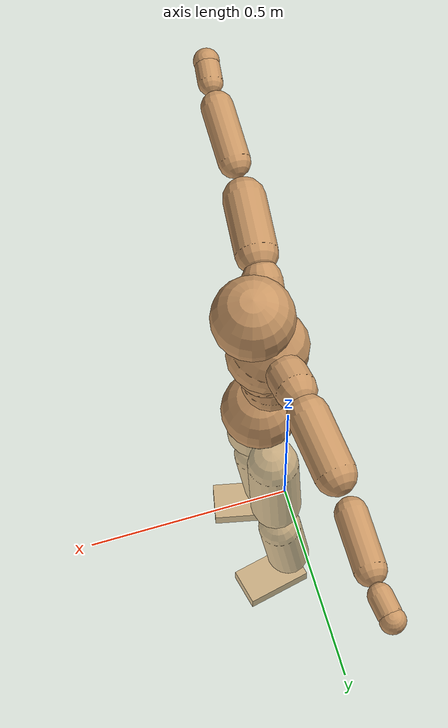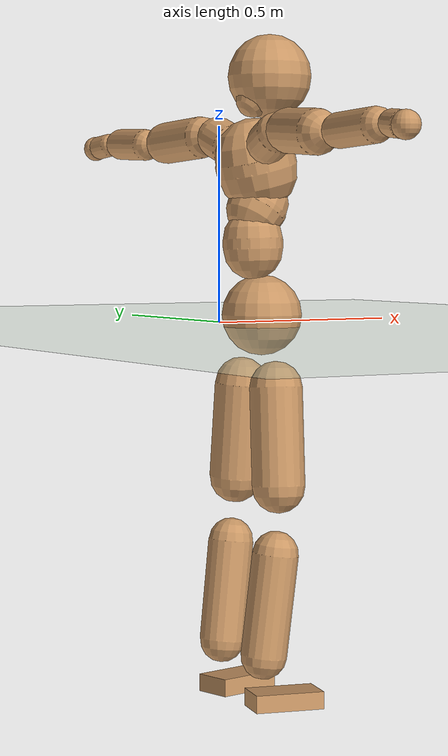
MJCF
<mujoco model="humanoid">
  <compiler coordinate="local" angle="radian"/>
  <default>
    <joint damping="0.0" armature="0.01" stiffness="0.0" limited="true"/>
    <geom conaffinity="1" condim="3" contype="7" margin="0.001" rgba="0.8 0.6 .4 1"/>
  </default>
  <asset>
    <texture type="skybox" builtin="gradient" rgb1=".4 .5 .6" rgb2="0 0 0" width="100" height="100"/>
    <texture builtin="flat" height="1278" mark="cross" markrgb="1 1 1" name="texgeom" random="0.01" rgb1="0.8 0.6 0.4" rgb2="0.8 0.6 0.4" type="cube" width="127"/>
    <texture builtin="checker" height="100" name="texplane" rgb1="0 0 0" rgb2="0.8 0.8 0.8" type="2d" width="100"/>
    <material name="MatPlane" reflectance="0.5" shininess="1" specular="1" texrepeat="60 60" texture="texplane"/>
    <material name="geom" texture="texgeom" texuniform="true"/>
  </asset>
  <worldbody>
    <light cutoff="100" diffuse="1 1 1" dir="-0 0 -1.3" directional="true" exponent="1" pos="0 0 1.3" specular=".1 .1 .1"/>
    <geom conaffinity="1" condim="3" name="floor" pos="0 0 0" rgba="0.8 0.9 0.8 1" size="100 100 .2" type="plane" material="MatPlane"/>
    <body name="Pelvis" pos="-0.0008 -0.2184 0.0268">
      <freejoint name="Pelvis"/>
      <geom type="sphere" contype="1" conaffinity="1" density="500" size="0.0996" pos="0.0000 0.0000 0.0000" name="Pelvis"/>
      <body name="L_Hip" pos="-0.0092 0.0773 -0.0951">
        <joint name="L_Hip_x" type="hinge" pos="0 0 0" axis="1 0 0" stiffness="800" damping="80" armature="0.02" range="-180.0000 180.0000"/>
        <joint name="L_Hip_y" type="hinge" pos="0 0 0" axis="0 1 0" stiffness="800" damping="80" armature="0.02" range="-180.0000 180.0000"/>
        <joint name="L_Hip_z" type="hinge" pos="0 0 0" axis="0 0 1" stiffness="800" damping="80" armature="0.02" range="-180.0000 180.0000"/>
        <geom type="capsule" contype="1" conaffinity="1" density="500" fromto="-0.0016 0.0067 -0.0791 -0.0064 0.0269 -0.3165" size="0.0659" name="L_Hip"/>
        <body name="L_Knee" pos="-0.008 0.0336 -0.3957">
          <joint name="L_Knee_x" type="hinge" pos="0 0 0" axis="1 0 0" stiffness="800" damping="80" armature="0.02" range="-180.0000 180.0000"/>
          <joint name="L_Knee_y" type="hinge" pos="0 0 0" axis="0 1 0" stiffness="800" damping="80" armature="0.02" range="-180.0000 180.0000"/>
          <joint name="L_Knee_z" type="hinge" pos="0 0 0" axis="0 0 1" stiffness="800" damping="80" armature="0.02" range="-180.0000 180.0000"/>
          <geom type="capsule" contype="1" conaffinity="1" density="500" fromto="-0.0097 -0.0023 -0.0836 -0.0390 -0.0094 -0.3343" size="0.0568" name="L_Knee"/>
          <body name="L_Ankle" pos="-0.0487 -0.0117 -0.4178">
            <joint name="L_Ankle_x" type="hinge" pos="0 0 0" axis="1 0 0" stiffness="800" damping="80" armature="0.02" range="-180.0000 180.0000"/>
            <joint name="L_Ankle_y" type="hinge" pos="0 0 0" axis="0 1 0" stiffness="800" damping="80" armature="0.02" range="-180.0000 180.0000"/>
            <joint name="L_Ankle_z" type="hinge" pos="0 0 0" axis="0 0 1" stiffness="800" damping="80" armature="0.02" range="-180.0000 180.0000"/>
            <geom type="box" contype="1" conaffinity="1" density="500" pos="0.0598 0.0133 -0.0297" size="0.0849 0.0487 0.0218" quat="0.9940 0.0000 0.0000 0.1095" name="L_Ankle"/>
            <body name="L_Toe" pos="0.1196 0.0267 -0.0594">
              <joint name="L_Toe_x" type="hinge" pos="0 0 0" axis="1 0 0" stiffness="500" damping="50" armature="0.02" range="-180.0000 180.0000"/>
              <joint name="L_Toe_y" type="hinge" pos="0 0 0" axis="0 1 0" stiffness="500" damping="50" armature="0.02" range="-180.0000 180.0000"/>
              <joint name="L_Toe_z" type="hinge" pos="0 0 0" axis="0 0 1" stiffness="500" damping="50" armature="0.02" range="-180.0000 180.0000"/>
              <geom type="box" contype="1" conaffinity="1" density="500" pos="0.0000 0.0000 0.0295" size="0.001 0.0024 0.0011" quat="0.9933 0.0000 0.0000 0.1155" name="L_Toe"/>
            </body>
          </body>
        </body>
      </body>
      <body name="R_Hip" pos="-0.0054 -0.0746 -0.0944">
        <joint name="R_Hip_x" type="hinge" pos="0 0 0" axis="1 0 0" stiffness="800" damping="80" armature="0.02" range="-180.0000 180.0000"/>
        <joint name="R_Hip_y" type="hinge" pos="0 0 0" axis="0 1 0" stiffness="800" damping="80" armature="0.02" range="-180.0000 180.0000"/>
        <joint name="R_Hip_z" type="hinge" pos="0 0 0" axis="0 0 1" stiffness="800" damping="80" armature="0.02" range="-180.0000 180.0000"/>
        <geom type="capsule" contype="1" conaffinity="1" density="500" fromto="-0.0022 -0.0081 -0.0804 -0.0088 -0.0326 -0.3218" size="0.0651" name="R_Hip"/>
        <body name="R_Knee" pos="-0.011 -0.0407 -0.4022">
          <joint name="R_Knee_x" type="hinge" pos="0 0 0" axis="1 0 0" stiffness="800" damping="80" armature="0.02" range="-180.0000 180.0000"/>
          <joint name="R_Knee_y" type="hinge" pos="0 0 0" axis="0 1 0" stiffness="800" damping="80" armature="0.02" range="-180.0000 180.0000"/>
          <joint name="R_Knee_z" type="hinge" pos="0 0 0" axis="0 0 1" stiffness="800" damping="80" armature="0.02" range="-180.0000 180.0000"/>
          <geom type="capsule" contype="1" conaffinity="1" density="500" fromto="-0.0094 0.0030 -0.0837 -0.0374 0.0119 -0.3347" size="0.0569" name="R_Knee"/>
          <body name="R_Ankle" pos="-0.0468 0.0148 -0.4184">
            <joint name="R_Ankle_x" type="hinge" pos="0 0 0" axis="1 0 0" stiffness="800" damping="80" armature="0.02" range="-180.0000 180.0000"/>
            <joint name="R_Ankle_y" type="hinge" pos="0 0 0" axis="0 1 0" stiffness="800" damping="80" armature="0.02" range="-180.0000 180.0000"/>
            <joint name="R_Ankle_z" type="hinge" pos="0 0 0" axis="0 0 1" stiffness="800" damping="80" armature="0.02" range="-180.0000 180.0000"/>
            <geom type="box" contype="1" conaffinity="1" density="500" pos="0.0619 -0.0134 -0.0254" size="0.0864 0.0485 0.0217" quat="0.9943 0.0000 0.0000 -0.1064" name="R_Ankle"/>
            <body name="R_Toe" pos="0.1238 -0.0268 -0.0508">
              <joint name="R_Toe_x" type="hinge" pos="0 0 0" axis="1 0 0" stiffness="500" damping="50" armature="0.02" range="-180.0000 180.0000"/>
              <joint name="R_Toe_y" type="hinge" pos="0 0 0" axis="0 1 0" stiffness="500" damping="50" armature="0.02" range="-180.0000 180.0000"/>
              <joint name="R_Toe_z" type="hinge" pos="0 0 0" axis="0 0 1" stiffness="500" damping="50" armature="0.02" range="-180.0000 180.0000"/>
              <geom type="box" contype="1" conaffinity="1" density="500" pos="0.0000 0.0000 0.0279" size="0.0009 0.0024 0.0012" quat="0.9953 0.0000 0.0000 -0.0971" name="R_Toe"/>
            </body>
          </body>
        </body>
      </body>
      <body name="Torso" pos="-0.0243 -0.0029 0.1093">
        <joint name="Torso_x" type="hinge" pos="0 0 0" axis="1 0 0" stiffness="1000" damping="100" armature="0.02" range="-180.0000 180.0000"/>
        <joint name="Torso_y" type="hinge" pos="0 0 0" axis="0 1 0" stiffness="1000" damping="100" armature="0.02" range="-180.0000 180.0000"/>
        <joint name="Torso_z" type="hinge" pos="0 0 0" axis="0 0 1" stiffness="1000" damping="100" armature="0.02" range="-180.0000 180.0000"/>
        <geom type="capsule" contype="1" conaffinity="1" density="500" fromto="-0.0017 0.0025 0.0793 -0.0011 0.0017 0.0529" size="0.0745" name="Torso"/>
        <body name="Spine" pos="-0.0028 0.0042 0.1322">
          <joint name="Spine_x" type="hinge" pos="0 0 0" axis="1 0 0" stiffness="1000" damping="100" armature="0.02" range="-180.0000 180.0000"/>
          <joint name="Spine_y" type="hinge" pos="0 0 0" axis="0 1 0" stiffness="1000" damping="100" armature="0.02" range="-180.0000 180.0000"/>
          <joint name="Spine_z" type="hinge" pos="0 0 0" axis="0 0 1" stiffness="1000" damping="100" armature="0.02" range="-180.0000 180.0000"/>
          <geom type="capsule" contype="1" conaffinity="1" density="500" fromto="0.0189 0.0007 0.0315 0.0126 0.0005 0.0210" size="0.075" name="Spine"/>
          <body name="Chest" pos="0.0315 0.0012 0.0524">
            <joint name="Chest_x" type="hinge" pos="0 0 0" axis="1 0 0" stiffness="1000" damping="100" armature="0.02" range="-180.0000 180.0000"/>
            <joint name="Chest_y" type="hinge" pos="0 0 0" axis="0 1 0" stiffness="1000" damping="100" armature="0.02" range="-180.0000 180.0000"/>
            <joint name="Chest_z" type="hinge" pos="0 0 0" axis="0 0 1" stiffness="1000" damping="100" armature="0.02" range="-180.0000 180.0000"/>
            <geom type="capsule" contype="1" conaffinity="1" density="500" fromto="-0.0240 -0.0010 0.0917 -0.0160 -0.0006 0.0612" size="0.1" name="Chest"/>
            <body name="Neck" pos="-0.0409 -0.0031 0.2197">
              <joint name="Neck_x" type="hinge" pos="0 0 0" axis="1 0 0" stiffness="500" damping="50" armature="0.02" range="-180.0000 180.0000"/>
              <joint name="Neck_y" type="hinge" pos="0 0 0" axis="0 1 0" stiffness="500" damping="50" armature="0.02" range="-180.0000 180.0000"/>
              <joint name="Neck_z" type="hinge" pos="0 0 0" axis="0 0 1" stiffness="500" damping="50" armature="0.02" range="-180.0000 180.0000"/>
              <geom type="capsule" contype="1" conaffinity="1" density="500" fromto="0.0120 0.0007 0.0148 0.0480 0.0028 0.0591" size="0.0431" name="Neck"/>
              <body name="Head" pos="0.06 0.0035 0.0738">
                <joint name="Head_x" type="hinge" pos="0 0 0" axis="1 0 0" stiffness="500" damping="50" armature="0.02" range="-180.0000 180.0000"/>
                <joint name="Head_y" type="hinge" pos="0 0 0" axis="0 1 0" stiffness="500" damping="50" armature="0.02" range="-180.0000 180.0000"/>
                <joint name="Head_z" type="hinge" pos="0 0 0" axis="0 0 1" stiffness="500" damping="50" armature="0.02" range="-180.0000 180.0000"/>
                <geom type="sphere" contype="1" conaffinity="1" density="500" size="0.1036" pos="0.0000 0.0000 0.0000" name="Head"/>
              </body>
            </body>
            <body name="L_Thorax" pos="-0.0367 0.0786 0.1205">
              <joint name="L_Thorax_x" type="hinge" pos="0 0 0" axis="1 0 0" stiffness="500" damping="50" armature="0.02" range="-180.0000 180.0000"/>
              <joint name="L_Thorax_y" type="hinge" pos="0 0 0" axis="0 1 0" stiffness="500" damping="50" armature="0.02" range="-180.0000 180.0000"/>
              <joint name="L_Thorax_z" type="hinge" pos="0 0 0" axis="0 0 1" stiffness="500" damping="50" armature="0.02" range="-180.0000 180.0000"/>
              <geom type="capsule" contype="1" conaffinity="1" density="500" fromto="-0.0020 0.0173 0.0067 -0.0079 0.0693 0.0269" size="0.0524" name="L_Thorax"/>
              <body name="L_Shoulder" pos="-0.0099 0.0866 0.0336">
                <joint name="L_Shoulder_x" type="hinge" pos="0 0 0" axis="1 0 0" stiffness="500" damping="50" armature="0.02" range="-720.0000 720.0000"/>
                <joint name="L_Shoulder_y" type="hinge" pos="0 0 0" axis="0 1 0" stiffness="500" damping="50" armature="0.02" range="-720.0000 720.0000"/>
                <joint name="L_Shoulder_z" type="hinge" pos="0 0 0" axis="0 0 1" stiffness="500" damping="50" armature="0.02" range="-720.0000 720.0000"/>
                <geom type="capsule" contype="1" conaffinity="1" density="500" fromto="-0.0063 0.0531 -0.0031 -0.0250 0.2123 -0.0126" size="0.053" name="L_Shoulder"/>
                <body name="L_Elbow" pos="-0.0313 0.2654 -0.0157">
                  <joint name="L_Elbow_x" type="hinge" pos="0 0 0" axis="1 0 0" stiffness="500" damping="50" armature="0.02" range="-720.0000 720.0000"/>
                  <joint name="L_Elbow_y" type="hinge" pos="0 0 0" axis="0 1 0" stiffness="500" damping="50" armature="0.02" range="-720.0000 720.0000"/>
                  <joint name="L_Elbow_z" type="hinge" pos="0 0 0" axis="0 0 1" stiffness="500" damping="50" armature="0.02" range="-720.0000 720.0000"/>
                  <geom type="capsule" contype="1" conaffinity="1" density="500" fromto="0.0000 0.0498 0.0022 0.0002 0.1990 0.0087" size="0.041" name="L_Elbow"/>
                  <body name="L_Wrist" pos="0.0002 0.2488 0.0109">
                    <joint name="L_Wrist_x" type="hinge" pos="0 0 0" axis="1 0 0" stiffness="300" damping="30" armature="0.02" range="-180.0000 180.0000"/>
                    <joint name="L_Wrist_y" type="hinge" pos="0 0 0" axis="0 1 0" stiffness="300" damping="30" armature="0.02" range="-180.0000 180.0000"/>
                    <joint name="L_Wrist_z" type="hinge" pos="0 0 0" axis="0 0 1" stiffness="300" damping="30" armature="0.02" range="-180.0000 180.0000"/>
                    <geom type="capsule" contype="1" conaffinity="1" density="500" fromto="-0.0027 0.0163 -0.0020 -0.0108 0.0653 -0.0080" size="0.0309" name="L_Wrist"/>
                    <body name="L_Hand" pos="-0.0135 0.0817 -0.01">
                      <joint name="L_Hand_x" type="hinge" pos="0 0 0" axis="1 0 0" stiffness="300" damping="30" armature="0.02" range="-180.0000 180.0000"/>
                      <joint name="L_Hand_y" type="hinge" pos="0 0 0" axis="0 1 0" stiffness="300" damping="30" armature="0.02" range="-180.0000 180.0000"/>
                      <joint name="L_Hand_z" type="hinge" pos="0 0 0" axis="0 0 1" stiffness="300" damping="30" armature="0.02" range="-180.0000 180.0000"/>
                      <geom type="sphere" contype="1" conaffinity="1" density="500" size="0.0329" pos="0.0000 0.0000 0.0000" name="L_Hand"/>
                    </body>
                  </body>
                </body>
              </body>
            </body>
            <body name="R_Thorax" pos="-0.0423 -0.0803 0.1185">
              <joint name="R_Thorax_x" type="hinge" pos="0 0 0" axis="1 0 0" stiffness="500" damping="50" armature="0.02" range="-180.0000 180.0000"/>
              <joint name="R_Thorax_y" type="hinge" pos="0 0 0" axis="0 1 0" stiffness="500" damping="50" armature="0.02" range="-180.0000 180.0000"/>
              <joint name="R_Thorax_z" type="hinge" pos="0 0 0" axis="0 0 1" stiffness="500" damping="50" armature="0.02" range="-180.0000 180.0000"/>
              <geom type="capsule" contype="1" conaffinity="1" density="500" fromto="-0.0021 -0.0179 0.0070 -0.0083 -0.0715 0.0279" size="0.051" name="R_Thorax"/>
              <body name="R_Shoulder" pos="-0.0104 -0.0894 0.0349">
                <joint name="R_Shoulder_x" type="hinge" pos="0 0 0" axis="1 0 0" stiffness="500" damping="50" armature="0.02" range="-720.0000 720.0000"/>
                <joint name="R_Shoulder_y" type="hinge" pos="0 0 0" axis="0 1 0" stiffness="500" damping="50" armature="0.02" range="-720.0000 720.0000"/>
                <joint name="R_Shoulder_z" type="hinge" pos="0 0 0" axis="0 0 1" stiffness="500" damping="50" armature="0.02" range="-720.0000 720.0000"/>
                <geom type="capsule" contype="1" conaffinity="1" density="500" fromto="-0.0051 -0.0515 -0.0032 -0.0204 -0.2058 -0.0128" size="0.0544" name="R_Shoulder"/>
                <body name="R_Elbow" pos="-0.0255 -0.2573 -0.016">
                  <joint name="R_Elbow_x" type="hinge" pos="0 0 0" axis="1 0 0" stiffness="500" damping="50" armature="0.02" range="-720.0000 720.0000"/>
                  <joint name="R_Elbow_y" type="hinge" pos="0 0 0" axis="0 1 0" stiffness="500" damping="50" armature="0.02" range="-720.0000 720.0000"/>
                  <joint name="R_Elbow_z" type="hinge" pos="0 0 0" axis="0 0 1" stiffness="500" damping="50" armature="0.02" range="-720.0000 720.0000"/>
                  <geom type="capsule" contype="1" conaffinity="1" density="500" fromto="-0.0006 -0.0512 0.0020 -0.0024 -0.2046 0.0080" size="0.0414" name="R_Elbow"/>
                  <body name="R_Wrist" pos="-0.003 -0.2558 0.01">
                    <joint name="R_Wrist_x" type="hinge" pos="0 0 0" axis="1 0 0" stiffness="300" damping="30" armature="0.02" range="-180.0000 180.0000"/>
                    <joint name="R_Wrist_y" type="hinge" pos="0 0 0" axis="0 1 0" stiffness="300" damping="30" armature="0.02" range="-180.0000 180.0000"/>
                    <joint name="R_Wrist_z" type="hinge" pos="0 0 0" axis="0 0 1" stiffness="300" damping="30" armature="0.02" range="-180.0000 180.0000"/>
                    <geom type="capsule" contype="1" conaffinity="1" density="500" fromto="-0.0021 -0.0163 -0.0015 -0.0085 -0.0654 -0.0060" size="0.0316" name="R_Wrist"/>
                    <body name="R_Hand" pos="-0.0106 -0.0817 -0.0075">
                      <joint name="R_Hand_x" type="hinge" pos="0 0 0" axis="1 0 0" stiffness="300" damping="30" armature="0.02" range="-180.0000 180.0000"/>
                      <joint name="R_Hand_y" type="hinge" pos="0 0 0" axis="0 1 0" stiffness="300" damping="30" armature="0.02" range="-180.0000 180.0000"/>
                      <joint name="R_Hand_z" type="hinge" pos="0 0 0" axis="0 0 1" stiffness="300" damping="30" armature="0.02" range="-180.0000 180.0000"/>
                      <geom type="sphere" contype="1" conaffinity="1" density="500" size="0.0330" pos="0.0000 0.0000 0.0000" name="R_Hand"/>
                    </body>
                  </body>
                </body>
              </body>
            </body>
          </body>
        </body>
      </body>
    </body>
  </worldbody>
  <actuator>
    <motor name="L_Hip_x" joint="L_Hip_x" gear="500"/>
    <motor name="L_Hip_y" joint="L_Hip_y" gear="500"/>
    <motor name="L_Hip_z" joint="L_Hip_z" gear="500"/>
    <motor name="L_Knee_x" joint="L_Knee_x" gear="500"/>
    <motor name="L_Knee_y" joint="L_Knee_y" gear="500"/>
    <motor name="L_Knee_z" joint="L_Knee_z" gear="500"/>
    <motor name="L_Ankle_x" joint="L_Ankle_x" gear="500"/>
    <motor name="L_Ankle_y" joint="L_Ankle_y" gear="500"/>
    <motor name="L_Ankle_z" joint="L_Ankle_z" gear="500"/>
    <motor name="L_Toe_x" joint="L_Toe_x" gear="500"/>
    <motor name="L_Toe_y" joint="L_Toe_y" gear="500"/>
    <motor name="L_Toe_z" joint="L_Toe_z" gear="500"/>
    <motor name="R_Hip_x" joint="R_Hip_x" gear="500"/>
    <motor name="R_Hip_y" joint="R_Hip_y" gear="500"/>
    <motor name="R_Hip_z" joint="R_Hip_z" gear="500"/>
    <motor name="R_Knee_x" joint="R_Knee_x" gear="500"/>
    <motor name="R_Knee_y" joint="R_Knee_y" gear="500"/>
    <motor name="R_Knee_z" joint="R_Knee_z" gear="500"/>
    <motor name="R_Ankle_x" joint="R_Ankle_x" gear="500"/>
    <motor name="R_Ankle_y" joint="R_Ankle_y" gear="500"/>
    <motor name="R_Ankle_z" joint="R_Ankle_z" gear="500"/>
    <motor name="R_Toe_x" joint="R_Toe_x" gear="500"/>
    <motor name="R_Toe_y" joint="R_Toe_y" gear="500"/>
    <motor name="R_Toe_z" joint="R_Toe_z" gear="500"/>
    <motor name="Torso_x" joint="Torso_x" gear="500"/>
    <motor name="Torso_y" joint="Torso_y" gear="500"/>
    <motor name="Torso_z" joint="Torso_z" gear="500"/>
    <motor name="Spine_x" joint="Spine_x" gear="500"/>
    <motor name="Spine_y" joint="Spine_y" gear="500"/>
    <motor name="Spine_z" joint="Spine_z" gear="500"/>
    <motor name="Chest_x" joint="Chest_x" gear="500"/>
    <motor name="Chest_y" joint="Chest_y" gear="500"/>
    <motor name="Chest_z" joint="Chest_z" gear="500"/>
    <motor name="Neck_x" joint="Neck_x" gear="500"/>
    <motor name="Neck_y" joint="Neck_y" gear="500"/>
    <motor name="Neck_z" joint="Neck_z" gear="500"/>
    <motor name="Head_x" joint="Head_x" gear="500"/>
    <motor name="Head_y" joint="Head_y" gear="500"/>
    <motor name="Head_z" joint="Head_z" gear="500"/>
    <motor name="L_Thorax_x" joint="L_Thorax_x" gear="500"/>
    <motor name="L_Thorax_y" joint="L_Thorax_y" gear="500"/>
    <motor name="L_Thorax_z" joint="L_Thorax_z" gear="500"/>
    <motor name="L_Shoulder_x" joint="L_Shoulder_x" gear="500"/>
    <motor name="L_Shoulder_y" joint="L_Shoulder_y" gear="500"/>
    <motor name="L_Shoulder_z" joint="L_Shoulder_z" gear="500"/>
    <motor name="L_Elbow_x" joint="L_Elbow_x" gear="500"/>
    <motor name="L_Elbow_y" joint="L_Elbow_y" gear="500"/>
    <motor name="L_Elbow_z" joint="L_Elbow_z" gear="500"/>
    <motor name="L_Wrist_x" joint="L_Wrist_x" gear="500"/>
    <motor name="L_Wrist_y" joint="L_Wrist_y" gear="500"/>
    <motor name="L_Wrist_z" joint="L_Wrist_z" gear="500"/>
    <motor name="L_Hand_x" joint="L_Hand_x" gear="500"/>
    <motor name="L_Hand_y" joint="L_Hand_y" gear="500"/>
    <motor name="L_Hand_z" joint="L_Hand_z" gear="500"/>
    <motor name="R_Thorax_x" joint="R_Thorax_x" gear="500"/>
    <motor name="R_Thorax_y" joint="R_Thorax_y" gear="500"/>
    <motor name="R_Thorax_z" joint="R_Thorax_z" gear="500"/>
    <motor name="R_Shoulder_x" joint="R_Shoulder_x" gear="500"/>
    <motor name="R_Shoulder_y" joint="R_Shoulder_y" gear="500"/>
    <motor name="R_Shoulder_z" joint="R_Shoulder_z" gear="500"/>
    <motor name="R_Elbow_x" joint="R_Elbow_x" gear="500"/>
    <motor name="R_Elbow_y" joint="R_Elbow_y" gear="500"/>
    <motor name="R_Elbow_z" joint="R_Elbow_z" gear="500"/>
    <motor name="R_Wrist_x" joint="R_Wrist_x" gear="500"/>
    <motor name="R_Wrist_y" joint="R_Wrist_y" gear="500"/>
    <motor name="R_Wrist_z" joint="R_Wrist_z" gear="500"/>
    <motor name="R_Hand_x" joint="R_Hand_x" gear="500"/>
    <motor name="R_Hand_y" joint="R_Hand_y" gear="500"/>
    <motor name="R_Hand_z" joint="R_Hand_z" gear="500"/>
  </actuator>
  <contact>
    <exclude body1="Torso" body2="Chest"/>
    <exclude body1="Head" body2="Chest"/>
    <exclude body1="R_Knee" body2="R_Toe"/>
    <exclude body1="R_Knee" body2="L_Ankle"/>
    <exclude body1="R_Knee" body2="L_Toe"/>
    <exclude body1="L_Knee" body2="L_Toe"/>
    <exclude body1="L_Knee" body2="R_Ankle"/>
    <exclude body1="L_Knee" body2="R_Toe"/>
    <exclude body1="L_Shoulder" body2="Chest"/>
    <exclude body1="R_Shoulder" body2="Chest"/>
  </contact>
  <sensor/>
  <size njmax="700" nconmax="700"/>
</mujoco>
